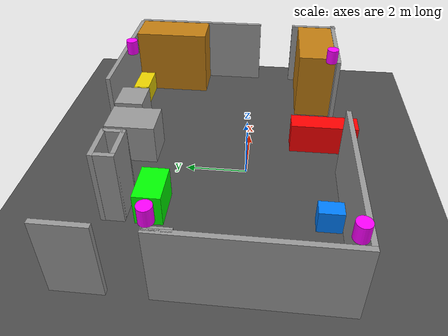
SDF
<sdf version="1.6">
 <world name="highbay_swarm_world">
  <plugin filename="ignition-gazebo-collada-world-exporter-system" name="ignition::gazebo::systems::ColladaWorldExporter"/>
  <scene><ambient>0.4 0.4 0.4 1</ambient><background>0.7 0.7 0.7 1</background><shadows>1</shadows></scene>
  <gravity>0 0 -9.8</gravity>
  <magnetic_field>6e-06 2.3e-05 -4.2e-05</magnetic_field>
  <atmosphere type="adiabatic"/>
  <physics name="default_physics" default="0" type="ode">
   <max_step_size>0.001</max_step_size>
   <real_time_factor>1</real_time_factor>
   <real_time_update_rate>1000</real_time_update_rate>
  </physics>
  <light type="directional" name="sun">
   <pose>0 0 10 0 0 0</pose>
   <diffuse>0.8 0.8 0.8 1</diffuse>
   <specular>0.2 0.2 0.2 1</specular>
   <attenuation>
    <range>1000</range>
    <constant>0.9</constant>
    <linear>0.01</linear>
    <quadratic>0.0001</quadratic>
   </attenuation>
   <direction>-0.5 0.1 -0.9</direction>
  </light>
  <include><uri>model://ground_plane_custom</uri></include>
  <include><uri>model://highbay</uri><pose>0.73 0.88 0 0 -0 0</pose><static>1</static></include>
  <include>
   <uri>model://wall_table2</uri>
   <static>1</static>
   <name>wall_table2_1</name>
   <pose>4.42 4.5 0 0 -0 1.8e-05</pose>
  </include>
  <include>
   <uri>model://wall_table2</uri>
   <static>1</static>
   <name>wall_table2_2</name>
   <pose>3.21 4.5 0 0 -0 1.8e-05</pose>
  </include>
  <include>
   <uri>model://highbay_shelves</uri>
   <static>1</static>
   <pose>4.99 -2.33 0 0 -0 1.8e-05</pose>
   <name>highbay_shelves_1</name>
  </include>
  <include>
   <uri>model://highbay_shelves</uri>
   <static>1</static>
   <pose>5.7 3.41 0 0 -0 1.57</pose>
   <name>highbay_shelves_2</name>
  </include>
  <include><uri>model://sand_blaster_and_brake</uri><static>1</static><pose>0.78 3.94 0 0 -0 0</pose></include>
  <include><uri>model://abb_control_box</uri><static>1</static><pose>2.0 4.29 0 0 -0 0</pose></include>
  <include>
   <uri>model://mega_stitch</uri>
   <static>1</static>
   <pose>1.6 -2.6 0 0 -0 1.57</pose>
   <name>ws_1</name>
  </include>
  <include>
   <uri>model://rf_welder</uri>
   <static>1</static>
   <pose>-2.0 2.7 0 0 -0 0</pose>
   <name>ws_2</name>
  </include>
  <include>
   <uri>model://sewing_short_arm</uri>
   <static>1</static>
   <pose>-2.20 -2.6 0 0 -0 1.57</pose>
   <name>ws_3</name>
  </include>
  <include>
   <name>uwb_anchor100</name>
   <uri>model://uwb_anchor</uri>
   <static>1</static>
   <pose>-4.8 -2.8 2.5 0 0 0</pose>
  </include>
  <include>
   <name>uwb_anchor101</name>
   <uri>model://uwb_anchor</uri>
   <static>1</static>
   <pose>3.4 -2.8 2.5 0 0 0</pose>
  </include>
  <include>
   <name>uwb_anchor102</name>
   <uri>model://uwb_anchor</uri>
   <static>1</static>
   <pose>3.4 4.5 2.5 0 0 0</pose>
  </include>
  <include>
   <name>uwb_anchor103</name>
   <uri>model://uwb_anchor</uri>
   <static>1</static>
   <pose>-4.8 2 2.5 0 0 0</pose>
  </include>
 </world>
</sdf>

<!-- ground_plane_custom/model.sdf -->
<sdf version='1.6'>
  <model name='ground_plane_custom'>
    <link name='link'>

      <self_collide>0</self_collide>
      <enable_wind>0</enable_wind>
      <kinematic>0</kinematic>
      <pose>0 0 0 0 -0 0</pose>
      <gravity>1</gravity>

      <visual name='visual'>
        <geometry>
          <plane>
            <normal>0 0 1</normal>
            <size>15 15</size>
          </plane>
        </geometry>

        <material>
          <ambient>0.3 0.3 0.3 1</ambient>
          <diffuse>0.3 0.3 0.3 1</diffuse>
          <specular>0.3 0.3 0.3 1</specular>
          <emissive>0 0 0 1</emissive>
        </material>

        <pose>0 0 0 0 -0 0</pose>

        <cast_shadows>0</cast_shadows>

      </visual>

      <collision name='collision'>

        <geometry>
          <plane>
            <normal>0 0 1</normal>
            <size>100 100</size>
          </plane>
        </geometry>

        <surface>

          <friction>
            <ode>
              <mu>100</mu>
              <mu2>50</mu2>
              <fdir1>0 0 0</fdir1>
              <slip1>0</slip1>
              <slip2>0</slip2>
            </ode>
            <torsional>
              <coefficient>1</coefficient>
              <patch_radius>0</patch_radius>
              <surface_radius>0</surface_radius>
              <use_patch_radius>1</use_patch_radius>
              <ode>
                <slip>0</slip>
              </ode>
            </torsional>
          </friction>

        </surface>

      </collision>

    </link>

    <static>1</static>

  </model>
</sdf>

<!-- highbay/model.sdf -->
<sdf version='1.6'>
  <model name='highbay'>
    <pose frame=''>0.715354 -0.134951 0 0 -0 0</pose>
    <link name='Wall_13'>
      <collision name='Wall_13_Collision'>
        <geometry>
          <box>
            <size>1.25 0.15 2.5</size>
          </box>
        </geometry>
        <pose frame=''>0 0 1.25 0 -0 0</pose>
      </collision>
      <visual name='Wall_13_Visual'>
        <pose frame=''>0 0 1.25 0 -0 0</pose>
        <geometry>
          <box>
            <size>1.25 0.15 2.5</size>
          </box>
        </geometry>
        <material>
          <script>
            <uri>file://media/materials/scripts/gazebo.material</uri>
            <name>Gazebo/Grey</name>
          </script>
          <ambient>1 1 1 0.8</ambient>
          <diffuse>1 1 1 0.8</diffuse>
          <specular>0.01 0.01 0.01 0.8</specular>
          <emissive>0 0 0 0.8</emissive>
        </material>
        <meta>
          <layer>0</layer>
        </meta>
      </visual>
      <pose frame=''>-2.74868 3.22027 0 0 -0 3.14159</pose>
    </link>
    <link name='Wall_18'>
      <collision name='Wall_18_Collision'>
        <geometry>
          <box>
            <size>0.75 0.15 2.5</size>
          </box>
        </geometry>
        <pose frame=''>0 0 1.25 0 -0 0</pose>
      </collision>
      <visual name='Wall_18_Visual'>
        <pose frame=''>0 0 1.25 0 -0 0</pose>
        <geometry>
          <box>
            <size>0.75 0.15 2.5</size>
          </box>
        </geometry>
        <material>
          <script>
            <uri>file://media/materials/scripts/gazebo.material</uri>
            <name>Gazebo/Grey</name>
          </script>
          <ambient>1 1 1 0.8</ambient>
          <diffuse>1 1 1 0.8</diffuse>
          <specular>0.01 0.01 0.01 0.8</specular>
          <emissive>0 0 0 0.8</emissive>
        </material>
        <meta>
          <layer>0</layer>
        </meta>
      </visual>
      <pose frame=''>-3.29326 2.91908 0 0 -0 -1.5708</pose>
    </link>
    <link name='Wall_2'>
      <collision name='Wall_2_Collision'>
        <geometry>
          <box>
            <size>5.25 0.15 2.5</size>
          </box>
        </geometry>
        <pose frame=''>0 0 1.25 0 -0 0</pose>
      </collision>
      <visual name='Wall_2_Visual'>
        <pose frame=''>0 0 1.25 0 -0 0</pose>
        <geometry>
          <box>
            <size>5.25 0.15 2.5</size>
          </box>
        </geometry>
        <material>
          <script>
            <uri>file://media/materials/scripts/gazebo.material</uri>
            <name>Gazebo/Grey</name>
          </script>
          <ambient>1 1 1 0.8</ambient>
          <diffuse>1 1 1 0.8</diffuse>
          <specular>0.01 0.01 0.01 0.8</specular>
          <emissive>0 0 0 0.8</emissive>
        </material>
        <meta>
          <layer>0</layer>
        </meta>
      </visual>
      <pose frame=''>-3.10348 -3.95675 0 0 -0 0</pose>
    </link>
    <link name='Wall_20'>
      <collision name='Wall_20_Collision'>
        <geometry>
          <box>
            <size>1.25 0.15 2.5</size>
          </box>
        </geometry>
        <pose frame=''>0 0 1.25 0 -0 0</pose>
      </collision>
      <visual name='Wall_20_Visual'>
        <pose frame=''>0 0 1.25 0 -0 0</pose>
        <geometry>
          <box>
            <size>1.25 0.15 2.5</size>
          </box>
        </geometry>
        <material>
          <script>
            <uri>file://media/materials/scripts/gazebo.material</uri>
            <name>Gazebo/Grey</name>
          </script>
          <ambient>1 1 1 0.8</ambient>
          <diffuse>1 1 1 0.8</diffuse>
          <specular>0.01 0.01 0.01 0.8</specular>
          <emissive>0 0 0 0.8</emissive>
        </material>
        <meta>
          <layer>0</layer>
        </meta>
      </visual>
      <pose frame=''>-2.74326 2.61908 0 0 -0 0</pose>
    </link>
    <link name='Wall_22'>
      <collision name='Wall_22_Collision'>
        <geometry>
          <box>
            <size>0.75 0.15 2.5</size>
          </box>
        </geometry>
        <pose frame=''>0 0 1.25 0 -0 0</pose>
      </collision>
      <visual name='Wall_22_Visual'>
        <pose frame=''>0 0 1.25 0 -0 0</pose>
        <geometry>
          <box>
            <size>0.75 0.15 2.5</size>
          </box>
        </geometry>
        <material>
          <script>
            <uri>file://media/materials/scripts/gazebo.material</uri>
            <name>Gazebo/Grey</name>
          </script>
          <ambient>1 1 1 0.8</ambient>
          <diffuse>1 1 1 0.8</diffuse>
          <specular>0.01 0.01 0.01 0.8</specular>
          <emissive>0 0 0 0.8</emissive>
        </material>
        <meta>
          <layer>0</layer>
        </meta>
      </visual>
      <pose frame=''>-2.19761 2.91908 0 0 -0 -1.5708</pose>
    </link>
    <link name='Wall_24'>
      <collision name='Wall_24_Collision'>
        <geometry>
          <box>
            <size>3.25 0.15 2.5</size>
          </box>
        </geometry>
        <pose frame=''>0 0 1.25 0 -0 0</pose>
      </collision>
      <visual name='Wall_24_Visual'>
        <pose frame=''>0 0 1.25 0 -0 0</pose>
        <geometry>
          <box>
            <size>3.25 0.15 2.5</size>
          </box>
        </geometry>
        <material>
          <script>
            <uri>file://media/materials/scripts/gazebo.material</uri>
            <name>Gazebo/Grey</name>
          </script>
          <ambient>1 1 1 0.8</ambient>
          <diffuse>1 1 1 0.8</diffuse>
          <specular>0.01 0.01 0.01 0.8</specular>
          <emissive>0 0 0 0.8</emissive>
        </material>
        <meta>
          <layer>0</layer>
        </meta>
      </visual>
      <pose frame=''>4.25333 -3.95016 0 0 -0 0</pose>
    </link>
    <link name='Wall_26'>
      <collision name='Wall_26_Collision'>
        <geometry>
          <box>
            <size>1.75 0.15 2.5</size>
          </box>
        </geometry>
        <pose frame=''>0 0 1.25 0 -0 0</pose>
      </collision>
      <visual name='Wall_26_Visual'>
        <pose frame=''>0 0 1.25 0 -0 0</pose>
        <geometry>
          <box>
            <size>1.75 0.15 2.5</size>
          </box>
        </geometry>
        <material>
          <script>
            <uri>file://media/materials/scripts/gazebo.material</uri>
            <name>Gazebo/Grey</name>
          </script>
          <ambient>1 1 1 0.8</ambient>
          <diffuse>1 1 1 0.8</diffuse>
          <specular>0.01 0.01 0.01 0.8</specular>
          <emissive>0 0 0 0.8</emissive>
        </material>
        <meta>
          <layer>0</layer>
        </meta>
      </visual>
      <pose frame=''>5.72213 -3.17946 0 0 -0 1.5708</pose>
    </link>
    <link name='Wall_28'>
      <collision name='Wall_28_Collision'>
        <geometry>
          <box>
            <size>5 0.15 2.5</size>
          </box>
        </geometry>
        <pose frame=''>0 0 1.25 0 -0 0</pose>
      </collision>
      <visual name='Wall_28_Visual'>
        <pose frame=''>0 0 1.25 0 -0 0</pose>
        <geometry>
          <box>
            <size>5 0.15 2.5</size>
          </box>
        </geometry>
        <material>
          <script>
            <uri>file://media/materials/scripts/gazebo.material</uri>
            <name>Gazebo/Grey</name>
          </script>
          <ambient>1 1 1 0.8</ambient>
          <diffuse>1 1 1 0.8</diffuse>
          <specular>0.01 0.01 0.01 0.8</specular>
          <emissive>0 0 0 0.8</emissive>
        </material>
        <meta>
          <layer>0</layer>
        </meta>
      </visual>
      <pose frame=''>5.72499 1.4964 0 0 -0 -1.5708</pose>
    </link>
    <link name='Wall_30'>
      <collision name='Wall_30_Collision'>
        <geometry>
          <box>
            <size>5 0.15 2.5</size>
          </box>
        </geometry>
        <pose frame=''>0 0 1.25 0 -0 0</pose>
      </collision>
      <visual name='Wall_30_Visual'>
        <pose frame=''>0 0 1.25 0 -0 0</pose>
        <geometry>
          <box>
            <size>5 0.15 2.5</size>
          </box>
        </geometry>
        <material>
          <script>
            <uri>file://media/materials/scripts/gazebo.material</uri>
            <name>Gazebo/Grey</name>
          </script>
          <ambient>1 1 1 0.8</ambient>
          <diffuse>1 1 1 0.8</diffuse>
          <specular>0.01 0.01 0.01 0.8</specular>
          <emissive>0 0 0 0.8</emissive>
        </material>
        <meta>
          <layer>0</layer>
        </meta>
      </visual>
      <pose frame=''>3.15126 3.97946 0 0 -0 3.14159</pose>
    </link>
    <link name='Wall_33'>
      <collision name='Wall_33_Collision'>
        <geometry>
          <box>
            <size>0.75 0.15 2.5</size>
          </box>
        </geometry>
        <pose frame=''>0 0 1.25 0 -0 0</pose>
      </collision>
      <visual name='Wall_33_Visual'>
        <pose frame=''>0 0 1.25 0 -0 0</pose>
        <geometry>
          <box>
            <size>0.75 0.15 2.5</size>
          </box>
        </geometry>
        <material>
          <script>
            <uri>file://media/materials/scripts/gazebo.material</uri>
            <name>Gazebo/Grey</name>
          </script>
          <ambient>1 1 1 0.8</ambient>
          <diffuse>1 1 1 0.8</diffuse>
          <specular>0.01 0.01 0.01 0.8</specular>
          <emissive>0 0 0 0.8</emissive>
        </material>
        <meta>
          <layer>0</layer>
        </meta>
      </visual>
      <pose frame=''>-5.73491 0.84373 0 0 -0 -1.5708</pose>
    </link>
    <link name='Wall_4'>
      <collision name='Wall_4_Collision'>
        <geometry>
          <box>
            <size>5.25 0.15 2.5</size>
          </box>
        </geometry>
        <pose frame=''>0 0 1.25 0 -0 0</pose>
      </collision>
      <visual name='Wall_4_Visual'>
        <pose frame=''>0 0 1.25 0 -0 0</pose>
        <geometry>
          <box>
            <size>5.25 0.15 2.5</size>
          </box>
        </geometry>
        <material>
          <script>
            <uri>file://media/materials/scripts/gazebo.material</uri>
            <name>Gazebo/Grey</name>
          </script>
          <ambient>1 1 1 0.8</ambient>
          <diffuse>1 1 1 0.8</diffuse>
          <specular>0.01 0.01 0.01 0.8</specular>
          <emissive>0 0 0 0.8</emissive>
        </material>
        <meta>
          <layer>0</layer>
        </meta>
      </visual>
      <pose frame=''>-5.80333 -1.40664 0 0 -0 -1.5708</pose>
    </link>
    <link name='Wall_6'>
      <collision name='Wall_6_Collision'>
        <geometry>
          <box>
            <size>1.5 0.15 2.5</size>
          </box>
        </geometry>
        <pose frame=''>0 0 1.25 0 -0 0</pose>
      </collision>
      <visual name='Wall_6_Visual'>
        <pose frame=''>0 0 1.25 0 -0 0</pose>
        <geometry>
          <box>
            <size>1.5 0.15 2.5</size>
          </box>
        </geometry>
        <material>
          <script>
            <uri>file://media/materials/scripts/gazebo.material</uri>
            <name>Gazebo/Grey</name>
          </script>
          <ambient>1 1 1 0.8</ambient>
          <diffuse>1 1 1 0.8</diffuse>
          <specular>0.01 0.01 0.01 0.8</specular>
          <emissive>0 0 0 0.8</emissive>
        </material>
        <meta>
          <layer>0</layer>
        </meta>
      </visual>
      <pose frame=''>-5.79524 3.09998 0 0 -0 -1.5708</pose>
    </link>
    <static>1</static>
  </model>
</sdf>

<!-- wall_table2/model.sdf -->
<sdf version='1.6'>
  <model name='wall_table2'>
    <link name='link'>
      <inertial>
        <mass>15</mass>
        <inertia>
          <ixx>15.166667</ixx>
          <ixy>0</ixy>
          <ixz>0</ixz>
          <iyy>15.166667</iyy>
          <iyz>0</iyz>
          <izz>15.166667</izz>
        </inertia>
        <pose>0 0 0.385 0 -0 0</pose>
      </inertial>
      <self_collide>0</self_collide>
      <enable_wind>0</enable_wind>
      <kinematic>0</kinematic>
      <pose>0 0 0 0 -0 0</pose>
      <gravity>1</gravity>
      <visual name='visual'>
        <geometry>
          <box>
            <size>1.2 0.6 0.75</size>
          </box>
        </geometry>
        <material>
          <script>
            <name>Gazebo/Grey</name>
            <uri>file://media/materials/scripts/gazebo.material</uri>
          </script>
          <shader type='pixel'>
            <normal_map>__default__</normal_map>
          </shader>
          <ambient>0.929 0.831 0 1</ambient>
          <diffuse>0.929 0.831 0 1</diffuse>
          <specular>0.01 0.01 0.01 1</specular>
          <emissive>0 0 0 1</emissive>
        </material>
        <pose>0 0 0.385 0 -0 0</pose>
        <transparency>0</transparency>
        <cast_shadows>1</cast_shadows>
      </visual>
      <collision name='collision'>
        <laser_retro>0</laser_retro>
        <max_contacts>10</max_contacts>
        <pose>0 0 0.385 0 -0 0</pose>
        <geometry>
          <box>
            <size>1.2 0.6 0.75</size>
          </box>
        </geometry>
        <surface>
          <friction>
            <ode>
              <mu>100</mu>
              <mu2>50</mu2>
              <fdir1>0 0 0</fdir1>
              <slip1>0</slip1>
              <slip2>0</slip2>
            </ode>
            <torsional>
              <coefficient>1</coefficient>
              <patch_radius>0</patch_radius>
              <surface_radius>0</surface_radius>
              <use_patch_radius>1</use_patch_radius>
              <ode>
                <slip>0</slip>
              </ode>
            </torsional>
          </friction>
          <bounce>
            <restitution_coefficient>0</restitution_coefficient>
            <threshold>1e+06</threshold>
          </bounce>
          <contact>
            <collide_without_contact>0</collide_without_contact>
            <collide_without_contact_bitmask>1</collide_without_contact_bitmask>
            <collide_bitmask>1</collide_bitmask>
            <ode>
              <soft_cfm>0</soft_cfm>
              <soft_erp>0.2</soft_erp>
              <kp>1e+13</kp>
              <kd>1</kd>
              <max_vel>0.01</max_vel>
              <min_depth>0</min_depth>
            </ode>
            <bullet>
              <split_impulse>1</split_impulse>
              <split_impulse_penetration_threshold>-0.01</split_impulse_penetration_threshold>
              <soft_cfm>0</soft_cfm>
              <soft_erp>0.2</soft_erp>
              <kp>1e+13</kp>
              <kd>1</kd>
            </bullet>
          </contact>
        </surface>
      </collision>
    </link>
    <static>0</static>
    <allow_auto_disable>1</allow_auto_disable>
  </model>
</sdf>

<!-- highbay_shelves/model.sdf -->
<sdf version='1.6'>
  <model name='highbay_shelves'>
    <link name='link'>
      <inertial>
        <mass>1000</mass>
        <inertia>
          <ixx>1101.166667</ixx>
          <ixy>0</ixy>
          <ixz>0</ixz>
          <iyy>1110.166667</iyy>
          <iyz>0</iyz>
          <izz>1110.166667</izz>
        </inertia>
        <pose>0 0 1.25 0 -0 0</pose>
      </inertial>
      <self_collide>0</self_collide>
      <enable_wind>0</enable_wind>
      <kinematic>0</kinematic>
      <pose>0 0 0 0 -0 0</pose>
      <gravity>1</gravity>
      <visual name='visual'>
        <geometry>
          <box>
            <size>2.74 1.32 2.5</size>
          </box>
        </geometry>
        <material>
          <script>
            <name>Gazebo/Grey</name>
            <uri>file://media/materials/scripts/gazebo.material</uri>
          </script>
          <shader type='pixel'>
            <normal_map>__default__</normal_map>
          </shader>
          <ambient>0.757 0.49 0.067 1</ambient>
          <diffuse>0.757 0.49 0.067 1</diffuse>
          <specular>0.3 0.3 0.3 1</specular>
          <emissive>0 0 0 1</emissive>
        </material>
        <pose>0 0 1.25 0 -0 0</pose>
        <transparency>0</transparency>
        <cast_shadows>1</cast_shadows>
      </visual>
      <collision name='collision'>
        <laser_retro>0</laser_retro>
        <max_contacts>10</max_contacts>
        <pose>0 0 1.25 0 -0 0</pose>
        <geometry>
          <box>
            <size>2.74 1.32 2.5</size>
          </box>
        </geometry>
        <surface>
          <friction>
            <ode>
              <mu>100</mu>
              <mu2>50</mu2>
              <fdir1>0 0 0</fdir1>
              <slip1>0</slip1>
              <slip2>0</slip2>
            </ode>
            <torsional>
              <coefficient>1</coefficient>
              <patch_radius>0</patch_radius>
              <surface_radius>0</surface_radius>
              <use_patch_radius>1</use_patch_radius>
              <ode>
                <slip>0</slip>
              </ode>
            </torsional>
          </friction>
          <bounce>
            <restitution_coefficient>0</restitution_coefficient>
            <threshold>1e+06</threshold>
          </bounce>
          <contact>
            <collide_without_contact>0</collide_without_contact>
            <collide_without_contact_bitmask>1</collide_without_contact_bitmask>
            <collide_bitmask>1</collide_bitmask>
            <ode>
              <soft_cfm>0</soft_cfm>
              <soft_erp>0.2</soft_erp>
              <kp>1e+13</kp>
              <kd>1</kd>
              <max_vel>0.01</max_vel>
              <min_depth>0</min_depth>
            </ode>
            <bullet>
              <split_impulse>1</split_impulse>
              <split_impulse_penetration_threshold>-0.01</split_impulse_penetration_threshold>
              <soft_cfm>0</soft_cfm>
              <soft_erp>0.2</soft_erp>
              <kp>1e+13</kp>
              <kd>1</kd>
            </bullet>
          </contact>
        </surface>
      </collision>
    </link>
    <static>0</static>
    <allow_auto_disable>1</allow_auto_disable>
  </model>
</sdf>

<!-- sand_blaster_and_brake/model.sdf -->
<sdf version='1.6'>
  <model name='sand_blaster_and_brake'>
    <link name='link'>
      <inertial>
        <mass>100</mass>
        <inertia>
          <ixx>110.166667</ixx>
          <ixy>0</ixy>
          <ixz>0</ixz>
          <iyy>110.166667</iyy>
          <iyz>0</iyz>
          <izz>110.166667</izz>
        </inertia>
        <pose>0 0 0.7 0 -0 0</pose>
      </inertial>
      <self_collide>0</self_collide>
      <enable_wind>0</enable_wind>
      <kinematic>0</kinematic>
      <pose>0 0 0 0 -0 0</pose>
      <gravity>1</gravity>
      <visual name='visual'>
        <geometry>
          <box>
            <size>1.22 1.7 1.4</size>
          </box>
        </geometry>
        <material>
          <script>
            <name>Gazebo/Grey</name>
            <uri>file://media/materials/scripts/gazebo.material</uri>
          </script>
          <shader type='pixel'>
            <normal_map>__default__</normal_map>
          </shader>
          <ambient>0.65 0.65 0.65 1</ambient>
          <diffuse>0.65 0.65 0.65 1</diffuse>
          <specular>0.01 0.01 0.01 1</specular>
          <emissive>0 0 0 1</emissive>
        </material>
        <pose>0 0 0.7 0 -0 0</pose>
        <transparency>0</transparency>
        <cast_shadows>1</cast_shadows>
      </visual>
      <collision name='collision'>
        <laser_retro>0</laser_retro>
        <max_contacts>10</max_contacts>
        <pose>0 0 0.7 0 -0 0</pose>
        <geometry>
          <box>
            <size>1.22 1.7 1.4</size>
          </box>
        </geometry>
        <surface>
          <friction>
            <ode>
              <mu>100</mu>
              <mu2>50</mu2>
              <fdir1>0 0 0</fdir1>
              <slip1>0</slip1>
              <slip2>0</slip2>
            </ode>
            <torsional>
              <coefficient>1</coefficient>
              <patch_radius>0</patch_radius>
              <surface_radius>0</surface_radius>
              <use_patch_radius>1</use_patch_radius>
              <ode>
                <slip>0</slip>
              </ode>
            </torsional>
          </friction>
          <bounce>
            <restitution_coefficient>0</restitution_coefficient>
            <threshold>1e+06</threshold>
          </bounce>
          <contact>
            <collide_without_contact>0</collide_without_contact>
            <collide_without_contact_bitmask>1</collide_without_contact_bitmask>
            <collide_bitmask>1</collide_bitmask>
            <ode>
              <soft_cfm>0</soft_cfm>
              <soft_erp>0.2</soft_erp>
              <kp>1e+13</kp>
              <kd>1</kd>
              <max_vel>0.01</max_vel>
              <min_depth>0</min_depth>
            </ode>
            <bullet>
              <split_impulse>1</split_impulse>
              <split_impulse_penetration_threshold>-0.01</split_impulse_penetration_threshold>
              <soft_cfm>0</soft_cfm>
              <soft_erp>0.2</soft_erp>
              <kp>1e+13</kp>
              <kd>1</kd>
            </bullet>
          </contact>
        </surface>
      </collision>
    </link>
    <static>0</static>
    <allow_auto_disable>1</allow_auto_disable>
  </model>
</sdf>

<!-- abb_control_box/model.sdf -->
<sdf version='1.6'>
  <model name='abb_control_box'>
    <link name='link'>
      <inertial>
        <mass>200</mass>
        <inertia>
          <ixx>70.166667</ixx>
          <ixy>0</ixy>
          <ixz>0</ixz>
          <iyy>70.166667</iyy>
          <iyz>0</iyz>
          <izz>70.166667</izz>
        </inertia>
        <pose>0 0 0.75 0 -0 0</pose>
      </inertial>
      <self_collide>0</self_collide>
      <enable_wind>0</enable_wind>
      <kinematic>0</kinematic>
      <pose>0 0 0 0 -0 0</pose>
      <gravity>1</gravity>
      <visual name='visual'>
        <geometry>
          <box>
            <size>1.1 1. 1.5</size>
          </box>
        </geometry>
        <material>
          <script>
            <name>Gazebo/Grey</name>
            <uri>file://media/materials/scripts/gazebo.material</uri>
          </script>
          <shader type='pixel'>
            <normal_map>__default__</normal_map>
          </shader>
          <ambient>0.827 0.843 0.812 1</ambient>
          <diffuse>0.729 0.741 0.714 1</diffuse>
          <specular>0.01 0.01 0.01 1</specular>
          <emissive>0 0 0 1</emissive>
        </material>
        <pose>0 0 0.75 0 -0 0</pose>
        <transparency>0</transparency>
        <cast_shadows>1</cast_shadows>
      </visual>
      <collision name='collision'>
        <laser_retro>0</laser_retro>
        <max_contacts>10</max_contacts>
        <pose>0 0 0.75 0 -0 0</pose>
        <geometry>
          <box>
            <size>1.1 1. 1.5</size>
          </box>
        </geometry>
        <surface>
          <friction>
            <ode>
              <mu>100</mu>
              <mu2>50</mu2>
              <fdir1>0 0 0</fdir1>
              <slip1>0</slip1>
              <slip2>0</slip2>
            </ode>
            <torsional>
              <coefficient>1</coefficient>
              <patch_radius>0</patch_radius>
              <surface_radius>0</surface_radius>
              <use_patch_radius>1</use_patch_radius>
              <ode>
                <slip>0</slip>
              </ode>
            </torsional>
          </friction>
          <bounce>
            <restitution_coefficient>0</restitution_coefficient>
            <threshold>1e+06</threshold>
          </bounce>
          <contact>
            <collide_without_contact>0</collide_without_contact>
            <collide_without_contact_bitmask>1</collide_without_contact_bitmask>
            <collide_bitmask>1</collide_bitmask>
            <ode>
              <soft_cfm>0</soft_cfm>
              <soft_erp>0.2</soft_erp>
              <kp>1e+13</kp>
              <kd>1</kd>
              <max_vel>0.01</max_vel>
              <min_depth>0</min_depth>
            </ode>
            <bullet>
              <split_impulse>1</split_impulse>
              <split_impulse_penetration_threshold>-0.01</split_impulse_penetration_threshold>
              <soft_cfm>0</soft_cfm>
              <soft_erp>0.2</soft_erp>
              <kp>1e+13</kp>
              <kd>1</kd>
            </bullet>
          </contact>
        </surface>
      </collision>
    </link>
    <static>0</static>
    <allow_auto_disable>1</allow_auto_disable>
  </model>
</sdf>

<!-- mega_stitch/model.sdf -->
<sdf version='1.6'>
  <model name='mega_stitch'>
    <link name='link'>
      <inertial>
        <mass>200</mass>
        <inertia>
          <ixx>110.166667</ixx>
          <ixy>0</ixy>
          <ixz>0</ixz>
          <iyy>110.166667</iyy>
          <iyz>0</iyz>
          <izz>110.166667</izz>
        </inertia>
        <pose>0 0 0.5461 0 -0 0</pose>
      </inertial>
      <self_collide>0</self_collide>
      <enable_wind>0</enable_wind>
      <kinematic>0</kinematic>
      <pose>0 0 0 0 -0 0</pose>
      <gravity>1</gravity>
      <visual name='visual'>
        <geometry>
          <box>
            <size>2.286 0.6858 1.0922</size>
          </box>
        </geometry>
        <material>
          <script>
            <name>Gazebo/Grey</name>
            <uri>file://media/materials/scripts/gazebo.material</uri>
          </script>
          <shader type='pixel'>
            <normal_map>__default__</normal_map>
          </shader>
          <ambient>1.0 0.0 0 1</ambient>
          <diffuse>1.0 0.0 0 1</diffuse>
          <specular>0.01 0.01 0.01 1</specular>
          <emissive>0 0 0 1</emissive>
        </material>
        <pose>0 0 0.5461 0 -0 0</pose>
        <transparency>0</transparency>
        <cast_shadows>1</cast_shadows>
      </visual>
      <collision name='collision'>
        <laser_retro>0</laser_retro>
        <max_contacts>10</max_contacts>
        <pose>0 0 0.5461 0 -0 0</pose>
        <geometry>
          <box>
            <size>2.286 0.6858 1.0922</size>
          </box>
        </geometry>
        <surface>
          <friction>
            <ode>
              <mu>100</mu>
              <mu2>50</mu2>
              <fdir1>0 0 0</fdir1>
              <slip1>0</slip1>
              <slip2>0</slip2>
            </ode>
            <torsional>
              <coefficient>1</coefficient>
              <patch_radius>0</patch_radius>
              <surface_radius>0</surface_radius>
              <use_patch_radius>1</use_patch_radius>
              <ode>
                <slip>0</slip>
              </ode>
            </torsional>
          </friction>
          <bounce>
            <restitution_coefficient>0</restitution_coefficient>
            <threshold>1e+06</threshold>
          </bounce>
          <contact>
            <collide_without_contact>0</collide_without_contact>
            <collide_without_contact_bitmask>1</collide_without_contact_bitmask>
            <collide_bitmask>1</collide_bitmask>
            <ode>
              <soft_cfm>0</soft_cfm>
              <soft_erp>0.2</soft_erp>
              <kp>1e+13</kp>
              <kd>1</kd>
              <max_vel>0.01</max_vel>
              <min_depth>0</min_depth>
            </ode>
            <bullet>
              <split_impulse>1</split_impulse>
              <split_impulse_penetration_threshold>-0.01</split_impulse_penetration_threshold>
              <soft_cfm>0</soft_cfm>
              <soft_erp>0.2</soft_erp>
              <kp>1e+13</kp>
              <kd>1</kd>
            </bullet>
          </contact>
        </surface>
      </collision>
    </link>
    <static>0</static>
    <allow_auto_disable>1</allow_auto_disable>
  </model>
</sdf>

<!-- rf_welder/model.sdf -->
<sdf version='1.6'>
  <model name='rf_welder'>
    <link name='link'>
      <inertial>
        <mass>500</mass>
        <inertia>
          <ixx>510.166667</ixx>
          <ixy>0</ixy>
          <ixz>0</ixz>
          <iyy>510.166667</iyy>
          <iyz>0</iyz>
          <izz>510.166667</izz>
        </inertia>
        <pose>0 0 0.5334 0 -0 0</pose>
      </inertial>
      <self_collide>0</self_collide>
      <enable_wind>0</enable_wind>
      <kinematic>0</kinematic>
      <pose>0 0 0 0 -0 0</pose>
      <gravity>1</gravity>
      <visual name='visual'>
        <geometry>
          <box>
            <size>1.3208 0.8636 1.0668</size>
          </box>
        </geometry>
        <material>
          <script>
            <name>Gazebo/Grey</name>
            <uri>file://media/materials/scripts/gazebo.material</uri>
          </script>
          <shader type='pixel'>
            <normal_map>__default__</normal_map>
          </shader>
          <ambient>0.0 1.0 0 1</ambient>
          <diffuse>0.0 1.0 0 1</diffuse>
          <specular>0.01 0.01 0.01 1</specular>
          <emissive>0 0 0 1</emissive>
        </material>
        <pose>0 0 0.5334 0 -0 0</pose>
        <transparency>0</transparency>
        <cast_shadows>1</cast_shadows>
      </visual>
      <collision name='collision'>
        <laser_retro>0</laser_retro>
        <max_contacts>10</max_contacts>
        <pose>0 0 0.5334 0 -0 0</pose>
        <geometry>
          <box>
            <size>1.3208 0.8636 1.0668</size>
          </box>
        </geometry>
        <surface>
          <friction>
            <ode>
              <mu>100</mu>
              <mu2>50</mu2>
              <fdir1>0 0 0</fdir1>
              <slip1>0</slip1>
              <slip2>0</slip2>
            </ode>
            <torsional>
              <coefficient>1</coefficient>
              <patch_radius>0</patch_radius>
              <surface_radius>0</surface_radius>
              <use_patch_radius>1</use_patch_radius>
              <ode>
                <slip>0</slip>
              </ode>
            </torsional>
          </friction>
          <bounce>
            <restitution_coefficient>0</restitution_coefficient>
            <threshold>1e+06</threshold>
          </bounce>
          <contact>
            <collide_without_contact>0</collide_without_contact>
            <collide_without_contact_bitmask>1</collide_without_contact_bitmask>
            <collide_bitmask>1</collide_bitmask>
            <ode>
              <soft_cfm>0</soft_cfm>
              <soft_erp>0.2</soft_erp>
              <kp>1e+13</kp>
              <kd>1</kd>
              <max_vel>0.01</max_vel>
              <min_depth>0</min_depth>
            </ode>
            <bullet>
              <split_impulse>1</split_impulse>
              <split_impulse_penetration_threshold>-0.01</split_impulse_penetration_threshold>
              <soft_cfm>0</soft_cfm>
              <soft_erp>0.2</soft_erp>
              <kp>1e+13</kp>
              <kd>1</kd>
            </bullet>
          </contact>
        </surface>
      </collision>
    </link>
    <static>0</static>
    <allow_auto_disable>1</allow_auto_disable>
  </model>
</sdf>

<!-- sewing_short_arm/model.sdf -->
<sdf version='1.6'>
  <model name='sewing_short_arm'>
    <link name='link'>
      <inertial>
        <mass>50</mass>
        <inertia>
          <ixx>50.166667</ixx>
          <ixy>0</ixy>
          <ixz>0</ixz>
          <iyy>50.166667</iyy>
          <iyz>0</iyz>
          <izz>50.166667</izz>
        </inertia>
        <pose>0 0 0.381 0 -0 0</pose>
      </inertial>
      <self_collide>0</self_collide>
      <enable_wind>0</enable_wind>
      <kinematic>0</kinematic>
      <pose>0 0 0 0 -0 0</pose>
      <gravity>1</gravity>
      <visual name='visual'>
        <geometry>
          <box>
            <size>0.762 0.508 0.762</size>
          </box>
        </geometry>
        <material>
          <script>
            <name>Gazebo/Grey</name>
            <uri>file://media/materials/scripts/gazebo.material</uri>
          </script>
          <shader type='pixel'>
            <normal_map>__default__</normal_map>
          </shader>
          <ambient>0.0 0.5 1.0 1</ambient>
          <diffuse>0.0 0.5 1.0 1</diffuse>
          <specular>0.01 0.01 0.01 1</specular>
          <emissive>0 0 0 1</emissive>
        </material>
        <pose>0 0 0.381 0 -0 0</pose>
        <transparency>0</transparency>
        <cast_shadows>1</cast_shadows>
      </visual>
      <collision name='collision'>
        <laser_retro>0</laser_retro>
        <max_contacts>10</max_contacts>
        <pose>0 0 0.381 0 -0 0</pose>
        <geometry>
          <box>
            <size>0.762 0.508 0.762</size>
          </box>
        </geometry>
        <surface>
          <friction>
            <ode>
              <mu>100</mu>
              <mu2>50</mu2>
              <fdir1>0 0 0</fdir1>
              <slip1>0</slip1>
              <slip2>0</slip2>
            </ode>
            <torsional>
              <coefficient>1</coefficient>
              <patch_radius>0</patch_radius>
              <surface_radius>0</surface_radius>
              <use_patch_radius>1</use_patch_radius>
              <ode>
                <slip>0</slip>
              </ode>
            </torsional>
          </friction>
          <bounce>
            <restitution_coefficient>0</restitution_coefficient>
            <threshold>1e+06</threshold>
          </bounce>
          <contact>
            <collide_without_contact>0</collide_without_contact>
            <collide_without_contact_bitmask>1</collide_without_contact_bitmask>
            <collide_bitmask>1</collide_bitmask>
            <ode>
              <soft_cfm>0</soft_cfm>
              <soft_erp>0.2</soft_erp>
              <kp>1e+13</kp>
              <kd>1</kd>
              <max_vel>0.01</max_vel>
              <min_depth>0</min_depth>
            </ode>
            <bullet>
              <split_impulse>1</split_impulse>
              <split_impulse_penetration_threshold>-0.01</split_impulse_penetration_threshold>
              <soft_cfm>0</soft_cfm>
              <soft_erp>0.2</soft_erp>
              <kp>1e+13</kp>
              <kd>1</kd>
            </bullet>
          </contact>
        </surface>
      </collision>
    </link>
    <static>0</static>
    <allow_auto_disable>1</allow_auto_disable>
  </model>
</sdf>

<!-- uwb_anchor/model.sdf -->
<sdf version='1.6'>
  <model name='uwb_anchor'>
    <static>1</static>
    <pose frame=''>-1.97158 -1.00088 0.5 0 -0 0</pose>
    <link name='link'>
      <inertial>
        <mass>1</mass>
        <inertia>
          <ixx>0.145833</ixx>
          <ixy>0</ixy>
          <ixz>0</ixz>
          <iyy>0.145833</iyy>
          <iyz>0</iyz>
          <izz>0.125</izz>
        </inertia>
      </inertial>
      <visual name='visual'>
        <geometry>
          <cylinder>
            <radius>0.20</radius>
            <length>0.5</length>
          </cylinder>
        </geometry>
        <material>
          <script>
            <name>Gazebo/Grey</name>
            <uri>file://media/materials/scripts/gazebo.material</uri>
          </script>
          <ambient>1 0 1 1</ambient>
          <diffuse>1 0 1 1</diffuse>
          <specular>0.01 0.01 0.01 1</specular>
          <emissive>0 0 0 1</emissive>
        </material>
        <pose>0 0 0.25 0 -0 0</pose>
        <transparency>0</transparency>
        <cast_shadows>1</cast_shadows>
      </visual>
      <self_collide>0</self_collide>
      <enable_wind>0</enable_wind>
      <kinematic>0</kinematic>
    </link>
    <enable_wind>0</enable_wind>
  </model>
</sdf>
